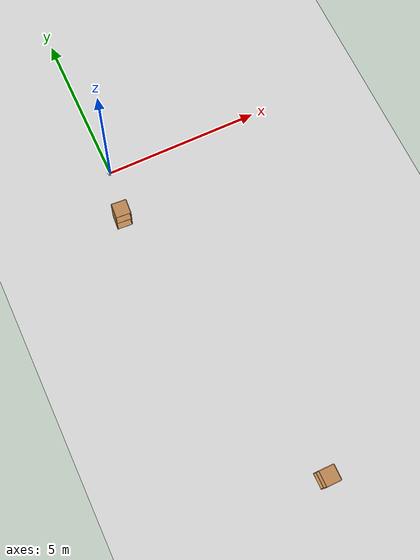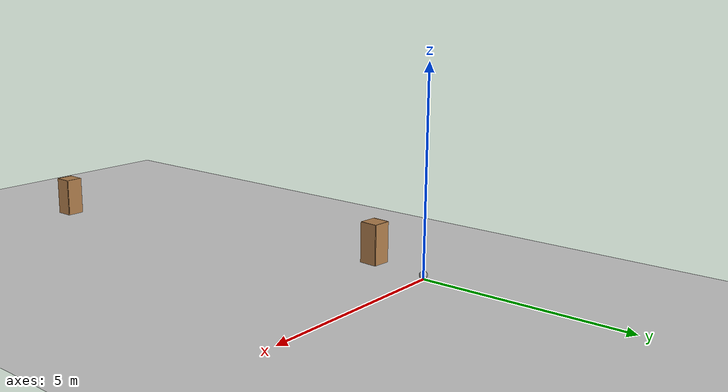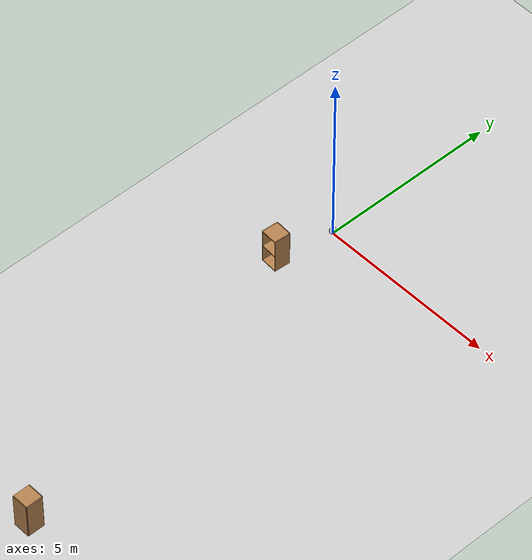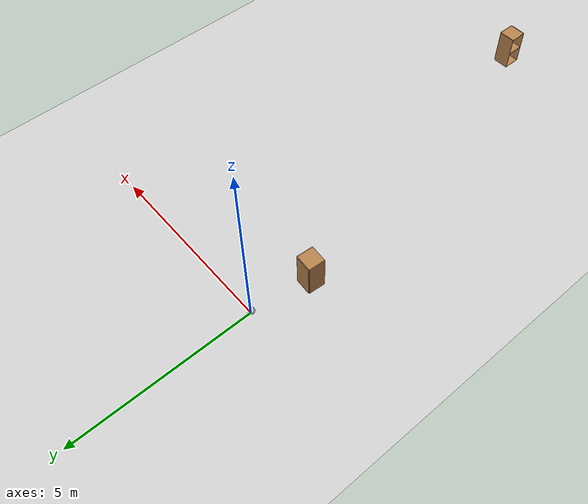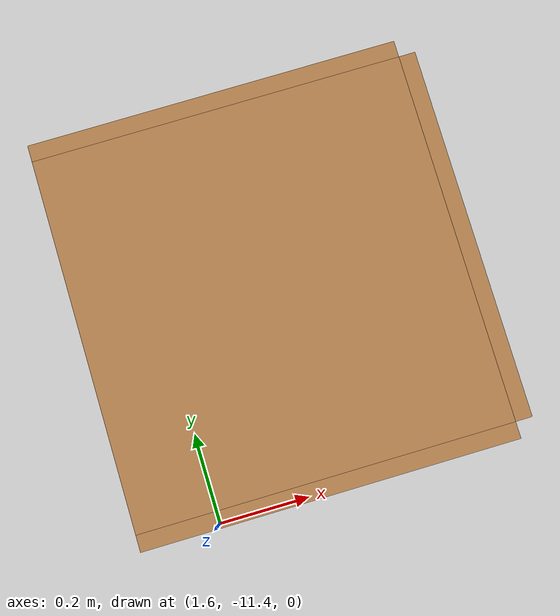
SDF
<sdf version="1.7">
 <world name="default">
  <light name="sun" type="directional">
   <pose>0 0 10 0 -0 0</pose>
   <diffuse>0.8 0.8 0.8 1</diffuse>
   <specular>0.2 0.2 0.2 1</specular>
   <attenuation>
    <range>1000</range>
    <constant>0.9</constant>
    <linear>0.01</linear>
    <quadratic>0.001</quadratic>
   </attenuation>
   <direction>-0.5 0.1 -0.9</direction>
   <spot><inner_angle>0</inner_angle><outer_angle>0</outer_angle><falloff>0</falloff></spot>
  </light>
  <model name="ground_plane">
   <static>1</static>
   <link name="link">
    <collision name="collision">
     <geometry><plane><normal>0 0 1</normal><size>100 100</size></plane></geometry>
     <surface><friction><ode><mu>100</mu><mu2>50</mu2></ode></friction></surface>
    </collision>
    <visual name="visual">
     <cast_shadows>0</cast_shadows>
     <geometry><plane><normal>0 0 1</normal><size>100 100</size></plane></geometry>
     <material>
      <script><uri>file://media/materials/scripts/gazebo.material</uri><name>Gazebo/Grey</name></script>
     </material>
    </visual>
   </link>
  </model>
  <gravity>0 0 -9.8</gravity>
  <magnetic_field>6e-06 2.3e-05 -4.2e-05</magnetic_field>
  <atmosphere type="adiabatic"/>
  <physics name="default_physics" default="0" type="ode">
   <max_step_size>0.001</max_step_size>
   <real_time_factor>1</real_time_factor>
   <real_time_update_rate>1000</real_time_update_rate>
  </physics>
  <scene><ambient>0.4 0.4 0.4 1</ambient><background>0.7 0.7 0.7 1</background><shadows>1</shadows></scene>
  <spherical_coordinates>
   <surface_model>EARTH_WGS84</surface_model>
   <latitude_deg>0</latitude_deg>
   <longitude_deg>0</longitude_deg>
   <elevation>0</elevation>
   <heading_deg>0</heading_deg>
  </spherical_coordinates>
  <model name="my_ball">
   <pose>0 0 0.1 0 -0 0</pose>
   <link name="link_0">
    <inertial>
     <mass>1</mass>
     <inertia><ixx>0.1</ixx><ixy>0</ixy><ixz>0</ixz><iyy>0.1</iyy><iyz>0</iyz><izz>0.1</izz></inertia>
    </inertial>
    <visual name="visual">
     <geometry><sphere><radius>0.1</radius></sphere></geometry>
     <material>
      <lighting>1</lighting>
      <script><uri>file://media/materials/scripts/gazebo.material</uri><name>Gazebo/Grey</name></script>
      <shader type="pixel"><normal_map>__default__</normal_map></shader>
      <ambient>1 1 1 1</ambient>
      <diffuse>1 1 1 1</diffuse>
      <specular>1 1 1 1</specular>
      <emissive>1 1 1 1</emissive>
     </material>
    </visual>
    <collision name="collision">
     <geometry><sphere><radius>0.1</radius></sphere></geometry>
     <surface>
      <friction>
       <ode><mu>1</mu><mu2>1</mu2><fdir1>0 0 0</fdir1><slip1>0</slip1><slip2>0</slip2></ode>
       <torsional>
        <coefficient>1</coefficient>
        <patch_radius>0</patch_radius>
        <surface_radius>0</surface_radius>
        <use_patch_radius>1</use_patch_radius>
        <ode><slip>0</slip></ode>
       </torsional>
      </friction>
      <bounce><restitution_coefficient>0</restitution_coefficient><threshold>1e+06</threshold></bounce>
      <contact>
       <collide_without_contact>0</collide_without_contact>
       <collide_without_contact_bitmask>1</collide_without_contact_bitmask>
       <collide_bitmask>1</collide_bitmask>
       <ode>
        <soft_cfm>0</soft_cfm>
        <soft_erp>0.2</soft_erp>
        <kp>1e+13</kp>
        <kd>1</kd>
        <max_vel>0.01</max_vel>
        <min_depth>0</min_depth>
       </ode>
       <bullet>
        <split_impulse>1</split_impulse>
        <split_impulse_penetration_threshold>-0.01</split_impulse_penetration_threshold>
        <soft_cfm>0</soft_cfm>
        <soft_erp>0.2</soft_erp>
        <kp>1e+13</kp>
        <kd>1</kd>
       </bullet>
      </contact>
     </surface>
    </collision>
   </link>
   <static>0</static>
  </model>
  <model name="cabinet">
   <static>1</static>
   <link name="cabinet_bottom_plate">
    <inertial>
     <pose>0 0 -1 0 -0 0</pose>
     <inertia><ixx>2.05</ixx><ixy>0</ixy><ixz>0</ixz><iyy>2.05</iyy><iyz>0</iyz><izz>2.05</izz></inertia>
     <mass>25</mass>
    </inertial>
    <collision name="cabinet_bottom_plate_geom">
     <pose>0 0 0.01 0 -0 0</pose>
     <geometry><box><size>0.45 0.45 0.02</size></box></geometry>
    </collision>
    <visual name="cabinet_bottom_plate_geom_visual">
     <pose>0 0 0.01 0 -0 0</pose>
     <geometry><box><size>0.45 0.45 0.02</size></box></geometry>
     <material>
      <script><uri>file://media/materials/scripts/gazebo.material</uri><name>Gazebo/Wood</name></script>
     </material>
    </visual>
    <collision name="cabinet_bottom_plate_geom_cabinet_back_plate">
     <pose>0.235 0 0.51 0 -0 0</pose>
     <geometry><box><size>0.02 0.45 1.02</size></box></geometry>
    </collision>
    <visual name="cabinet_bottom_plate_geom_cabinet_back_plate_visual">
     <pose>0.235 0 0.51 0 -0 0</pose>
     <geometry><box><size>0.02 0.45 1.02</size></box></geometry>
     <material>
      <script><uri>file://media/materials/scripts/gazebo.material</uri><name>Gazebo/Wood</name></script>
     </material>
    </visual>
    <collision name="cabinet_bottom_plate_geom_cabinet_left_plate">
     <pose>0 0.235 0.51 0 -0 0</pose>
     <geometry><box><size>0.45 0.02 1.02</size></box></geometry>
    </collision>
    <visual name="cabinet_bottom_plate_geom_cabinet_left_plate_visual">
     <pose>0 0.235 0.51 0 -0 0</pose>
     <geometry><box><size>0.45 0.02 1.02</size></box></geometry>
     <material>
      <script><uri>file://media/materials/scripts/gazebo.material</uri><name>Gazebo/Wood</name></script>
     </material>
    </visual>
    <collision name="cabinet_bottom_plate_geom_cabinet_middle_plate">
     <pose>0 0 0.51 0 -0 0</pose>
     <geometry><box><size>0.45 0.45 0.02</size></box></geometry>
    </collision>
    <visual name="cabinet_bottom_plate_geom_cabinet_middle_plate_visual">
     <pose>0 0 0.51 0 -0 0</pose>
     <geometry><box><size>0.45 0.45 0.02</size></box></geometry>
     <material>
      <script><uri>file://media/materials/scripts/gazebo.material</uri><name>Gazebo/Wood</name></script>
     </material>
    </visual>
    <collision name="cabinet_bottom_plate_geom_cabinet_right_plate">
     <pose>0 -0.235 0.51 0 -0 0</pose>
     <geometry><box><size>0.45 0.02 1.02</size></box></geometry>
    </collision>
    <visual name="cabinet_bottom_plate_geom_cabinet_right_plate_visual">
     <pose>0 -0.235 0.51 0 -0 0</pose>
     <geometry><box><size>0.45 0.02 1.02</size></box></geometry>
     <material>
      <script><uri>file://media/materials/scripts/gazebo.material</uri><name>Gazebo/Wood</name></script>
     </material>
    </visual>
    <collision name="cabinet_bottom_plate_geom_cabinet_top_plate">
     <pose>0 0 1.01 0 -0 0</pose>
     <geometry><box><size>0.45 0.45 0.02</size></box></geometry>
    </collision>
    <visual name="cabinet_bottom_plate_geom_cabinet_top_plate_visual">
     <pose>0 0 1.01 0 -0 0</pose>
     <geometry><box><size>0.45 0.45 0.02</size></box></geometry>
     <material>
      <script><uri>file://media/materials/scripts/gazebo.material</uri><name>Gazebo/Wood</name></script>
     </material>
    </visual>
   </link>
   <pose>1.80834 -11.1064 0 0 -0 0</pose>
  </model>
  <model name="cabinet_0">
   <static>1</static>
   <link name="cabinet_bottom_plate">
    <inertial>
     <pose>0 0 -1 0 -0 0</pose>
     <inertia><ixx>2.05</ixx><ixy>0</ixy><ixz>0</ixz><iyy>2.05</iyy><iyz>0</iyz><izz>2.05</izz></inertia>
     <mass>25</mass>
    </inertial>
    <collision name="cabinet_bottom_plate_geom">
     <pose>0 0 0.01 0 -0 0</pose>
     <geometry><box><size>0.45 0.45 0.02</size></box></geometry>
    </collision>
    <visual name="cabinet_bottom_plate_geom_visual">
     <pose>0 0 0.01 0 -0 0</pose>
     <geometry><box><size>0.45 0.45 0.02</size></box></geometry>
     <material>
      <script><uri>file://media/materials/scripts/gazebo.material</uri><name>Gazebo/Wood</name></script>
     </material>
    </visual>
    <collision name="cabinet_bottom_plate_geom_cabinet_back_plate">
     <pose>0.235 0 0.51 0 -0 0</pose>
     <geometry><box><size>0.02 0.45 1.02</size></box></geometry>
    </collision>
    <visual name="cabinet_bottom_plate_geom_cabinet_back_plate_visual">
     <pose>0.235 0 0.51 0 -0 0</pose>
     <geometry><box><size>0.02 0.45 1.02</size></box></geometry>
     <material>
      <script><uri>file://media/materials/scripts/gazebo.material</uri><name>Gazebo/Wood</name></script>
     </material>
    </visual>
    <collision name="cabinet_bottom_plate_geom_cabinet_left_plate">
     <pose>0 0.235 0.51 0 -0 0</pose>
     <geometry><box><size>0.45 0.02 1.02</size></box></geometry>
    </collision>
    <visual name="cabinet_bottom_plate_geom_cabinet_left_plate_visual">
     <pose>0 0.235 0.51 0 -0 0</pose>
     <geometry><box><size>0.45 0.02 1.02</size></box></geometry>
     <material>
      <script><uri>file://media/materials/scripts/gazebo.material</uri><name>Gazebo/Wood</name></script>
     </material>
    </visual>
    <collision name="cabinet_bottom_plate_geom_cabinet_middle_plate">
     <pose>0 0 0.51 0 -0 0</pose>
     <geometry><box><size>0.45 0.45 0.02</size></box></geometry>
    </collision>
    <visual name="cabinet_bottom_plate_geom_cabinet_middle_plate_visual">
     <pose>0 0 0.51 0 -0 0</pose>
     <geometry><box><size>0.45 0.45 0.02</size></box></geometry>
     <material>
      <script><uri>file://media/materials/scripts/gazebo.material</uri><name>Gazebo/Wood</name></script>
     </material>
    </visual>
    <collision name="cabinet_bottom_plate_geom_cabinet_right_plate">
     <pose>0 -0.235 0.51 0 -0 0</pose>
     <geometry><box><size>0.45 0.02 1.02</size></box></geometry>
    </collision>
    <visual name="cabinet_bottom_plate_geom_cabinet_right_plate_visual">
     <pose>0 -0.235 0.51 0 -0 0</pose>
     <geometry><box><size>0.45 0.02 1.02</size></box></geometry>
     <material>
      <script><uri>file://media/materials/scripts/gazebo.material</uri><name>Gazebo/Wood</name></script>
     </material>
    </visual>
    <collision name="cabinet_bottom_plate_geom_cabinet_top_plate">
     <pose>0 0 1.01 0 -0 0</pose>
     <geometry><box><size>0.45 0.45 0.02</size></box></geometry>
    </collision>
    <visual name="cabinet_bottom_plate_geom_cabinet_top_plate_visual">
     <pose>0 0 1.01 0 -0 0</pose>
     <geometry><box><size>0.45 0.45 0.02</size></box></geometry>
     <material>
      <script><uri>file://media/materials/scripts/gazebo.material</uri><name>Gazebo/Wood</name></script>
     </material>
    </visual>
   </link>
   <pose>-0.276351 -1.61801 0 0 -0 1.50009</pose>
  </model>
 </world>
</sdf>
